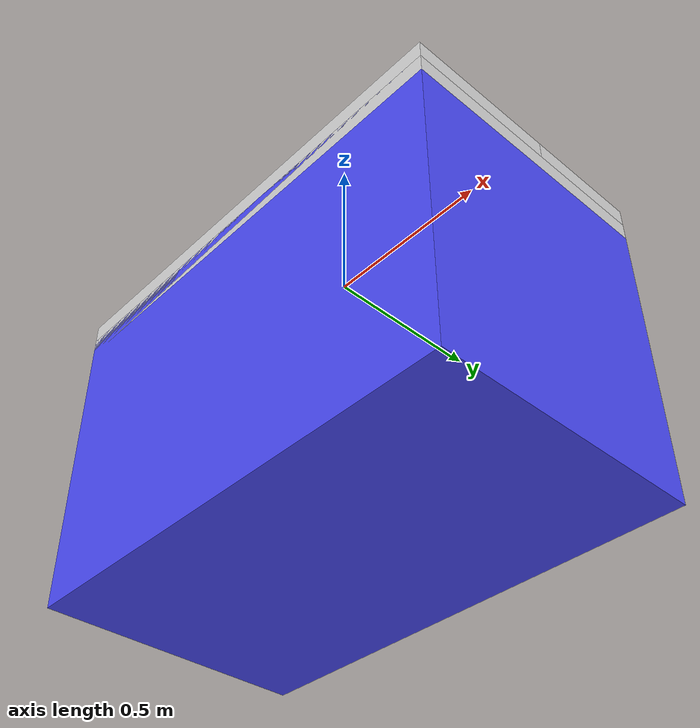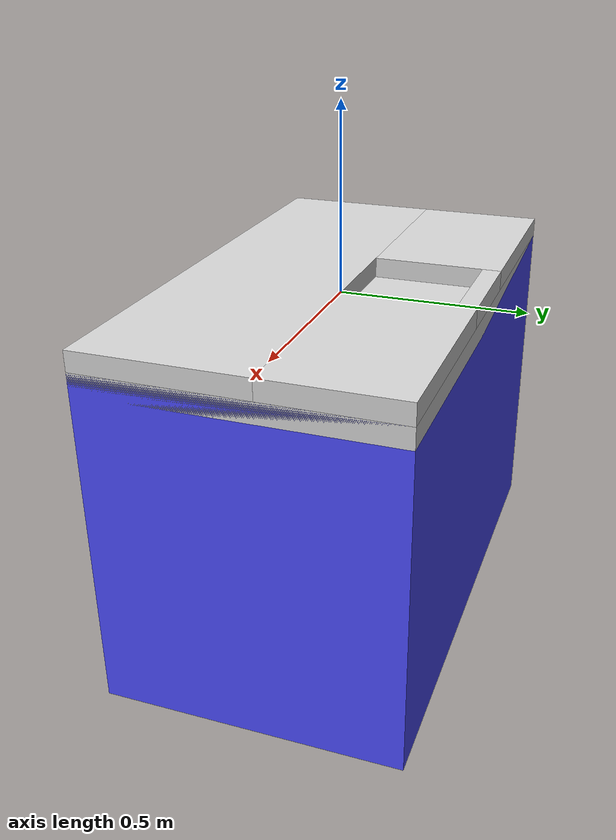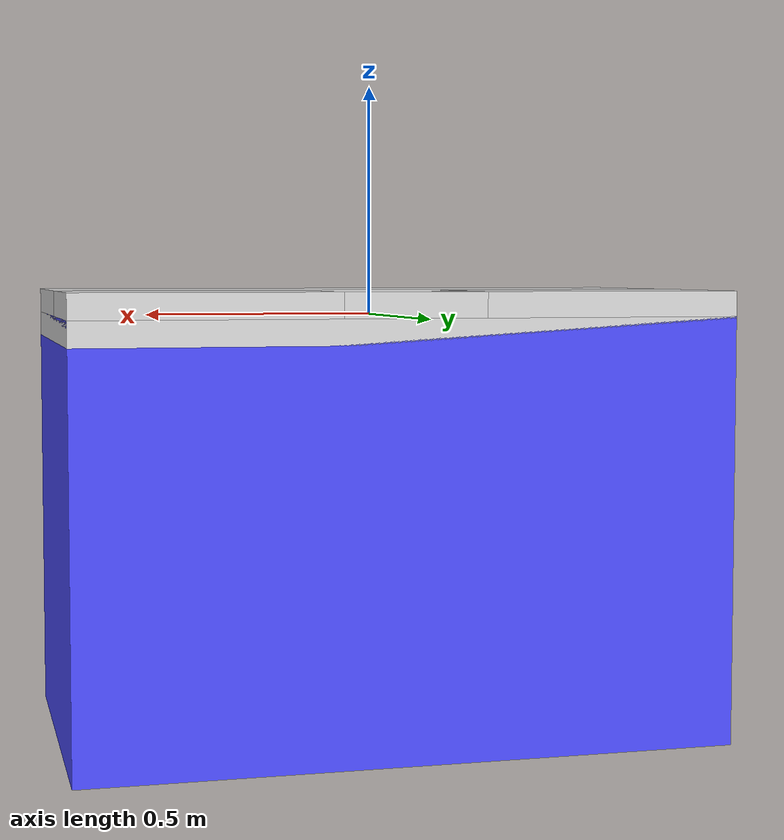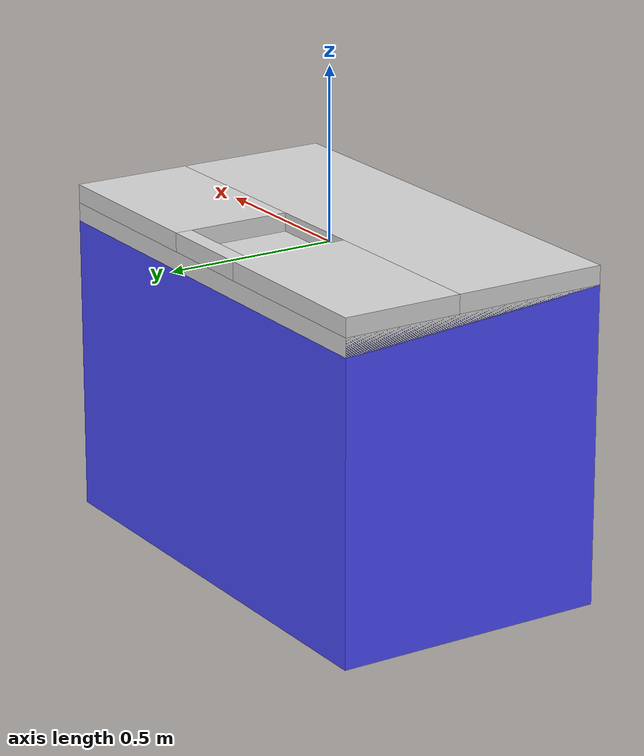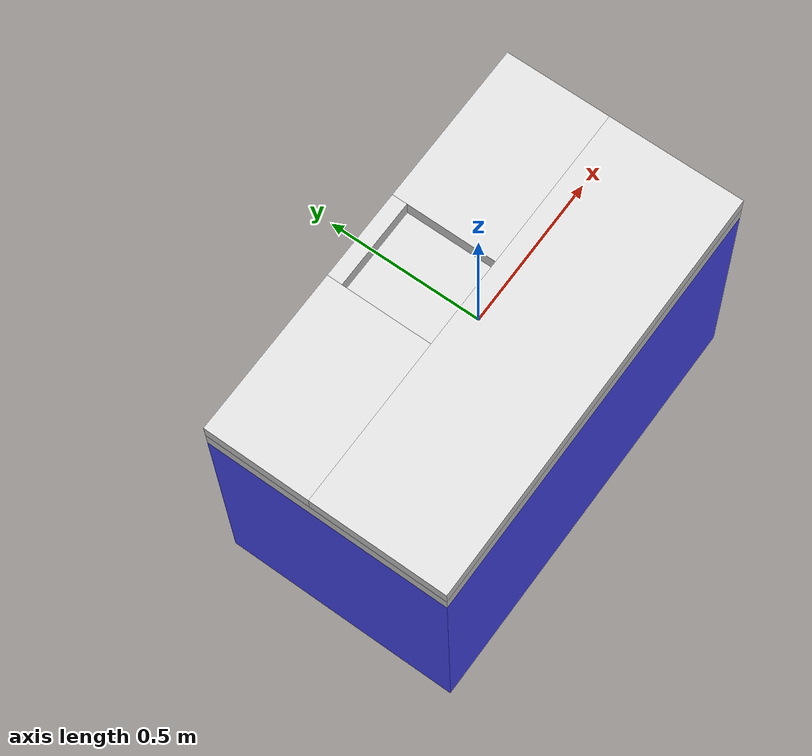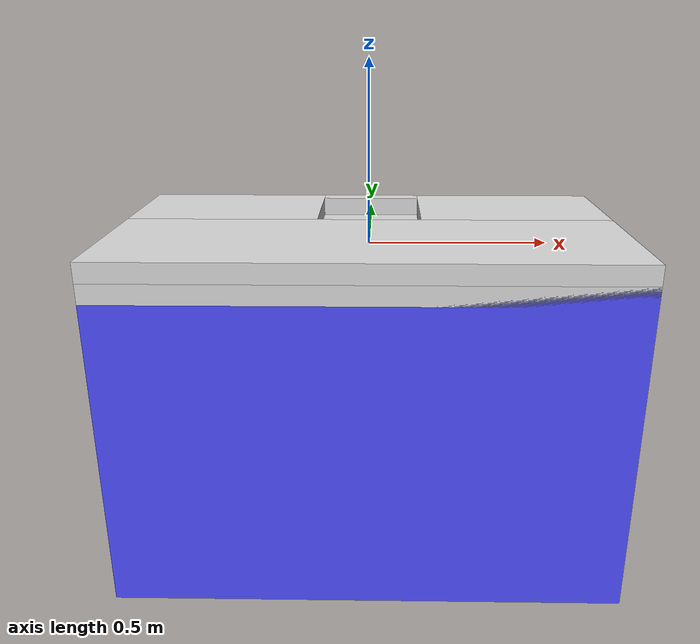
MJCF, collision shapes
<mujoco>
    <compiler angle="radian" inertiafromgeom="auto" inertiagrouprange="4 5"/>
    <asset>
        <texture name="T_table" type="cube" file="../textures/wood2.png"/>
        <texture name="T_floor" type="2d" file="../textures/floor2.png"/>

        <material name="basic_floor" texture="T_floor" texrepeat="12 12" shininess=".3" specular="0.5"
                  reflectance="0.2"/>
        <material name="table_wood" texture="T_table" shininess=".3" specular="0.5"/>
        <material name="table_col" rgba="0.3 0.3 1.0 0.5" shininess="0" specular="0"/>
        <material name="cmwhite" rgba=".85 .85 .85 1" shininess="1" reflectance=".7" specular=".5"/>

        <mesh file="../objects/meshes/table/tablebody.stl" name="tablebody" scale="1 1 1"/>
        <mesh file="../objects/meshes/table/tabletop.stl" name="tabletop" scale="1 1 1"/>

        <texture name="T_wallmetal" type="cube" file="../textures/metal.png"/>
        <material name="wall_metal" texture="T_wallmetal" shininess="1" reflectance="1" specular=".5"/>
    </asset>

    <worldbody>
      <body name="root">
        <body name="tablelink" pos="0 0 0">
          <geom material="cmwhite" group="1" type="box" size=".7 .4 .027" pos="0 0 -.027" conaffinity="0"
                contype="0"/>
          <geom material="cmwhite" group="1" mesh="tablebody" pos="0 0 -0.65" type="mesh" conaffinity="0"
                contype="0"/>
          <geom material="table_col" group="4" pos="0.0 0.0 -0.46" size="0.7 0.4 0.46" type="box" conaffinity="1"
                contype="0"/>
        </body>
        <body pos="0 0 0">
          <geom material="cmwhite" pos="0.0 -0.175 0.027" size="0.7 0.225 0.027" type="box" conaffinity="0" contype="0" group="1"/>
          <geom material="cmwhite" pos="0.0 0.375 0.027" size="0.15 0.025 0.027" type="box" conaffinity="0" contype="0" group="1"/>
          <geom material="cmwhite" pos="-0.425 0.225 0.027" size="0.275 0.175 0.027" type="box" conaffinity="0" contype="0" group="1"/>
          <geom material="cmwhite" pos="0.425 0.225 0.027" size="0.275 0.175 0.027" type="box" conaffinity="0" contype="0" group="1"/>

          <geom material="table_col" pos="0.0 -0.175 0.027" size="0.7 0.225 0.027" type="box" conaffinity="1" contype="0" group="4" solref="0.005 .1"/>
          <geom material="table_col" pos="0.0 0.375 0.027" size="0.15 0.025 0.027" type="box" conaffinity="1" contype="0" group="4" solref="0.005 .1"/>
          <geom material="table_col" pos="-0.425 0.225 0.027" size="0.275 0.175 0.027" type="box" conaffinity="1" contype="0" group="4" solref="0.005 .1"/>
          <geom material="table_col" pos="0.425 0.225 0.027" size="0.275 0.175 0.027" type="box" conaffinity="1" contype="0" group="4" solref="0.005 .1"/>
        </body>
      </body>
    </worldbody>
</mujoco>
